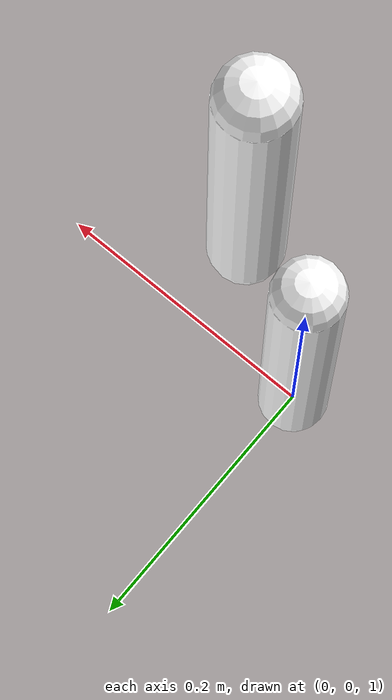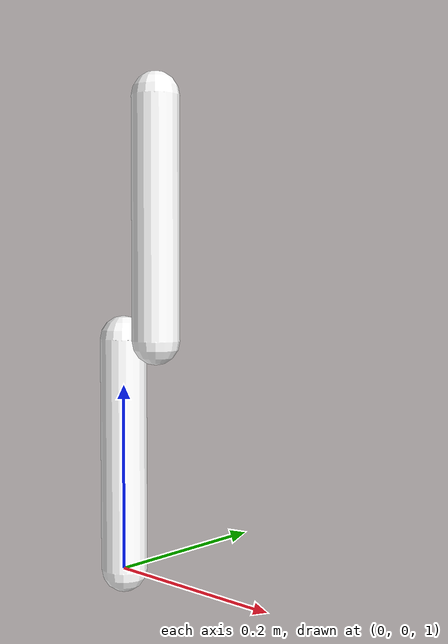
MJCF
<mujoco model="Arm">

    <asset>
        <texture type="skybox" builtin="gradient" rgb1="0.3 0.5 0.7" rgb2="0 0 0" width="512" height="512"/>
        <texture name="texplane" type="2d" builtin="checker" rgb1=".2 .3 .4" rgb2=".1 0.15 0.2"
        width="512" height="512" mark="cross" markrgb=".8 .8 .8"/>
        <material name="matplane" reflectance="0.3" texture="texplane" texrepeat="10 10" texuniform="true"/>
    </asset>

    <worldbody>
        <light diffuse=".4 .4 .4" specular="0.1 0.1 0.1" pos="0 0 2.0" dir="0 0 -1" castshadow="false"/>
        <light directional="true" diffuse=".8 .8 .8" specular="0.2 0.2 0.2" pos="0 0 4" dir="0 0 -1"/>

        <geom name="ground" type="plane" size="0 0 1" pos="0 0 0" quat="1 0 0 0" material="matplane" condim="1"/>

        <body pos="0.0 0.0 1.00">
            <joint name="input" type="hinge" pos="0.0 0.0 0.0" axis="1 0 0" damping="0.05" frictionloss="0.05"/>
            <geom type="capsule" fromto="0.0 0.0 0.0 0.0 0.0 0.25" size="0.025" rgba="1.0 1.0 1.0 1.0" mass="4.0"/>

            <body pos="0.05 0.0 0.25">
                <joint name="passive" type="hinge" pos="0.0 0.0 0.0" axis="1 0 0" damping="0.01" frictionloss="0.01" stiffness="2.0" springref="0.0"/>
                <geom type="capsule" fromto="0.0 0.0 0.0 0.0 0.0 0.25" size="0.025" rgba="1.0 1.0 1.0 1.0" mass="2.0"/>
            </body>
        </body>

    </worldbody>

    <actuator>
        <motor name="u" joint="input"/>
    </actuator>

</mujoco>
